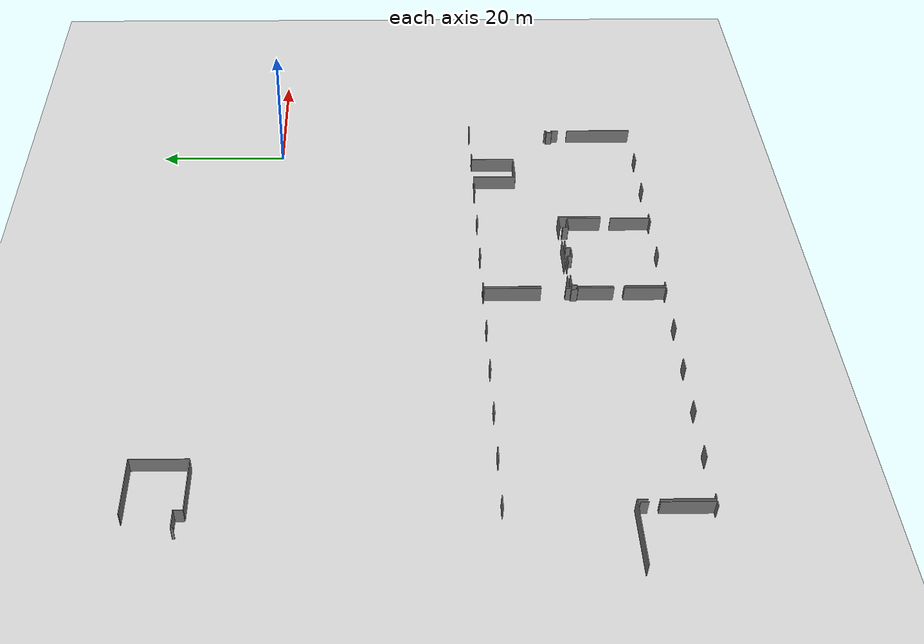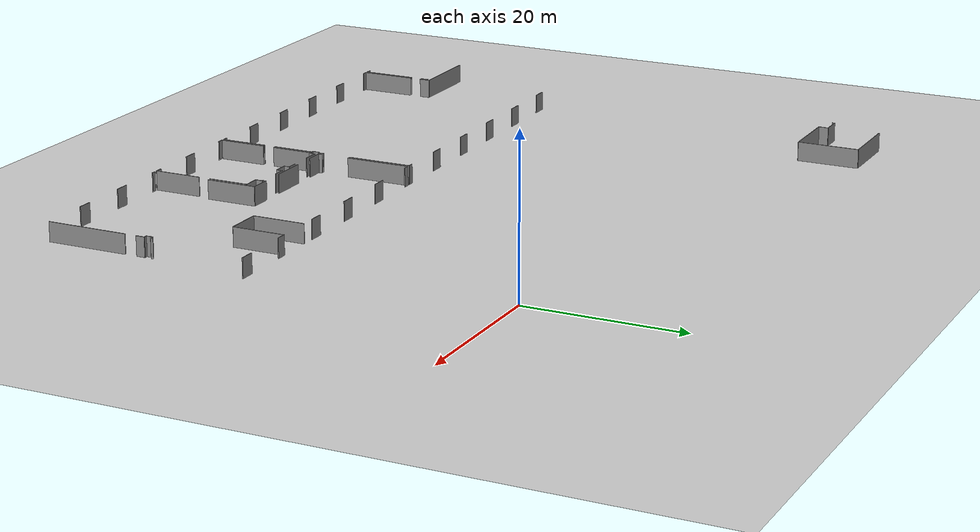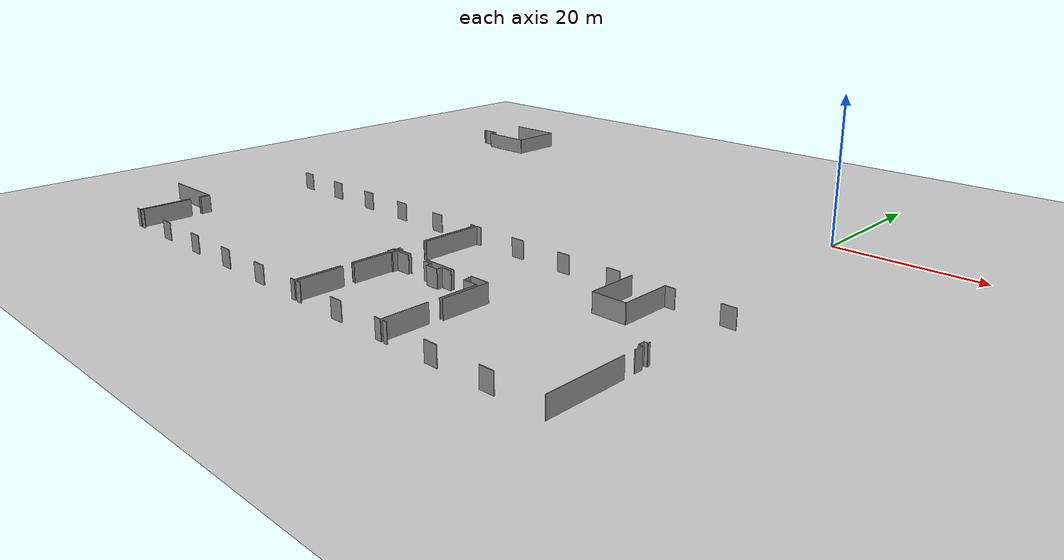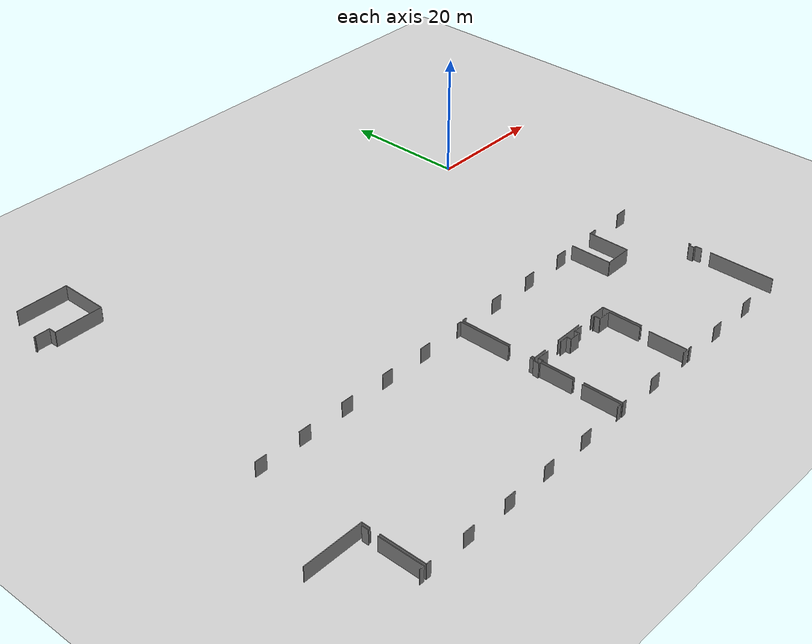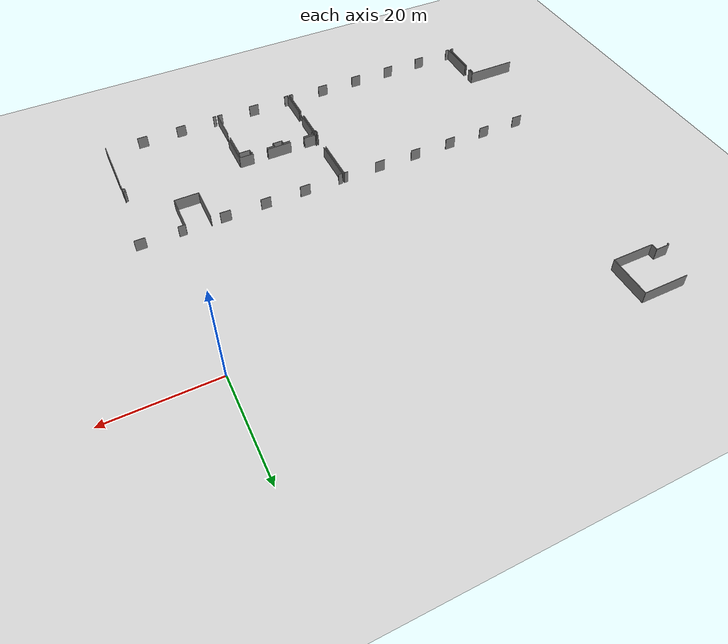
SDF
<sdf version="1.6">
 <world name="default">
  <model name="ground_plane">
   <static>1</static>
   <link name="link">
    <collision name="collision">
     <geometry><plane><normal>0 0 1</normal><size>100 100</size></plane></geometry>
     <surface><friction><ode><mu>100</mu><mu2>50</mu2></ode></friction></surface>
    </collision>
    <visual name="visual">
     <cast_shadows>0</cast_shadows>
     <geometry><plane><normal>0 0 1</normal><size>100 100</size></plane></geometry>
     <material>
      <script><uri>file://media/materials/scripts/gazebo.material</uri><name>Gazebo/Grey</name></script>
     </material>
    </visual>
   </link>
  </model>
  <model name="0510035519_A_40_1_102">
   <static>1</static>
   <link name="Wall_164">
    <collision name="Wall_164_Collision">
     <geometry><box><size>8.63896301944 0.1 2.5</size></box></geometry>
     <pose>4.31948150972 0 1.25 0 0 0</pose>
    </collision>
    <visual name="Wall_164_Visual">
     <pose>4.31948150972 0 1.25 0 0 0</pose>
     <geometry><box><size>8.63896301944 0.1 2.5</size></box></geometry>
     <material>
      <script><uri>file://media/materials/scripts/gazebo.material</uri><name>Gazebo/Grey</name></script>
      <ambient>1 1 1 1</ambient>
     </material>
    </visual>
    <pose>42.0279578091 -52.0238912187 0 0 0 0.0</pose>
   </link>
   <link name="Wall_165">
    <collision name="Wall_165_Collision">
     <geometry><box><size>8.05972804677 0.1 2.5</size></box></geometry>
     <pose>4.02986402338 0 1.25 0 0 0</pose>
    </collision>
    <visual name="Wall_165_Visual">
     <pose>4.02986402338 0 1.25 0 0 0</pose>
     <geometry><box><size>8.05972804677 0.1 2.5</size></box></geometry>
     <material>
      <script><uri>file://media/materials/scripts/gazebo.material</uri><name>Gazebo/Grey</name></script>
      <ambient>1 1 1 1</ambient>
     </material>
    </visual>
    <pose>50.6669208286 -52.0238912187 0 0 0 -1.57079632679</pose>
   </link>
   <link name="Wall_166">
    <collision name="Wall_166_Collision">
     <geometry><box><size>8.03685347566 0.1 2.5</size></box></geometry>
     <pose>4.01842673783 0 1.25 0 0 0</pose>
    </collision>
    <visual name="Wall_166_Visual">
     <pose>4.01842673783 0 1.25 0 0 0</pose>
     <geometry><box><size>8.03685347566 0.1 2.5</size></box></geometry>
     <material>
      <script><uri>file://media/materials/scripts/gazebo.material</uri><name>Gazebo/Grey</name></script>
      <ambient>1 1 1 1</ambient>
     </material>
    </visual>
    <pose>50.6669208286 -60.0836192655 0 0 0 3.14159265359</pose>
   </link>
   <link name="Wall_167">
    <collision name="Wall_167_Collision">
     <geometry><box><size>1.28529673402 0.1 2.5</size></box></geometry>
     <pose>0.64264836701 0 1.25 0 0 0</pose>
    </collision>
    <visual name="Wall_167_Visual">
     <pose>0.64264836701 0 1.25 0 0 0</pose>
     <geometry><box><size>1.28529673402 0.1 2.5</size></box></geometry>
     <material>
      <script><uri>file://media/materials/scripts/gazebo.material</uri><name>Gazebo/Grey</name></script>
      <ambient>1 1 1 1</ambient>
     </material>
    </visual>
    <pose>42.6300673529 -60.0836192655 0 0 0 1.57079632679</pose>
   </link>
   <link name="Wall_168">
    <collision name="Wall_168_Collision">
     <geometry><box><size>2.63591307663 0.1 2.5</size></box></geometry>
     <pose>1.31795653831 0 1.25 0 0 0</pose>
    </collision>
    <visual name="Wall_168_Visual">
     <pose>1.31795653831 0 1.25 0 0 0</pose>
     <geometry><box><size>2.63591307663 0.1 2.5</size></box></geometry>
     <material>
      <script><uri>file://media/materials/scripts/gazebo.material</uri><name>Gazebo/Grey</name></script>
      <ambient>1 1 1 1</ambient>
     </material>
    </visual>
    <pose>42.6300673529 -58.7983225315 0 0 0 3.14159265359</pose>
   </link>
   <link name="Wall_169">
    <collision name="Wall_169_Collision">
     <geometry><box><size>0.32126064303 0.1 2.5</size></box></geometry>
     <pose>0.160630321515 0 1.25 0 0 0</pose>
    </collision>
    <visual name="Wall_169_Visual">
     <pose>0.160630321515 0 1.25 0 0 0</pose>
     <geometry><box><size>0.32126064303 0.1 2.5</size></box></geometry>
     <material>
      <script><uri>file://media/materials/scripts/gazebo.material</uri><name>Gazebo/Grey</name></script>
      <ambient>1 1 1 1</ambient>
     </material>
    </visual>
    <pose>39.9941542763 -58.7983225315 0 0 0 -1.57079632679</pose>
   </link>
   <link name="Wall_532">
    <collision name="Wall_532_Collision">
     <geometry><box><size>1.079679756 0.1 2.5</size></box></geometry>
     <pose>0.539839878002 0 1.25 0 0 0</pose>
    </collision>
    <visual name="Wall_532_Visual">
     <pose>0.539839878002 0 1.25 0 0 0</pose>
     <geometry><box><size>1.079679756 0.1 2.5</size></box></geometry>
     <material>
      <script><uri>file://media/materials/scripts/gazebo.material</uri><name>Gazebo/Grey</name></script>
      <ambient>1 1 1 1</ambient>
     </material>
    </visual>
    <pose>43.4431312746 -117.692718262 0 0 0 -1.57079632679</pose>
   </link>
   <link name="Wall_533">
    <collision name="Wall_533_Collision">
     <geometry><box><size>7.15338670733 0.1 2.5</size></box></geometry>
     <pose>3.57669335367 0 1.25 0 0 0</pose>
    </collision>
    <visual name="Wall_533_Visual">
     <pose>3.57669335367 0 1.25 0 0 0</pose>
     <geometry><box><size>7.15338670733 0.1 2.5</size></box></geometry>
     <material>
      <script><uri>file://media/materials/scripts/gazebo.material</uri><name>Gazebo/Grey</name></script>
      <ambient>1 1 1 1</ambient>
     </material>
    </visual>
    <pose>43.4431312746 -120.242216292 0 0 0 -1.57079632679</pose>
   </link>
   <link name="Wall_534">
    <collision name="Wall_534_Collision">
     <geometry><box><size>0.744186046512 0.1 2.5</size></box></geometry>
     <pose>0.372093023256 0 1.25 0 0 0</pose>
    </collision>
    <visual name="Wall_534_Visual">
     <pose>0.372093023256 0 1.25 0 0 0</pose>
     <geometry><box><size>0.744186046512 0.1 2.5</size></box></geometry>
     <material>
      <script><uri>file://media/materials/scripts/gazebo.material</uri><name>Gazebo/Grey</name></script>
      <ambient>1 1 1 1</ambient>
     </material>
    </visual>
    <pose>43.4431312746 -127.395602999 0 0 0 3.14159265359</pose>
   </link>
   <link name="Wall_536">
    <collision name="Wall_536_Collision">
     <geometry><box><size>7.16304485958 0.1 2.5</size></box></geometry>
     <pose>3.58152242979 0 1.25 0 0 0</pose>
    </collision>
    <visual name="Wall_536_Visual">
     <pose>3.58152242979 0 1.25 0 0 0</pose>
     <geometry><box><size>7.16304485958 0.1 2.5</size></box></geometry>
     <material>
      <script><uri>file://media/materials/scripts/gazebo.material</uri><name>Gazebo/Grey</name></script>
      <ambient>1 1 1 1</ambient>
     </material>
    </visual>
    <pose>43.8373363833 -127.388486466 0 0 0 1.57079632679</pose>
   </link>
   <link name="Wall_537">
    <collision name="Wall_537_Collision">
     <geometry><box><size>1.39585716101 0.1 2.5</size></box></geometry>
     <pose>0.697928580506 0 1.25 0 0 0</pose>
    </collision>
    <visual name="Wall_537_Visual">
     <pose>0.697928580506 0 1.25 0 0 0</pose>
     <geometry><box><size>1.39585716101 0.1 2.5</size></box></geometry>
     <material>
      <script><uri>file://media/materials/scripts/gazebo.material</uri><name>Gazebo/Grey</name></script>
      <ambient>1 1 1 1</ambient>
     </material>
    </visual>
    <pose>43.8373363833 -118.696657771 0 0 0 1.57079632679</pose>
   </link>
   <link name="Wall_538">
    <collision name="Wall_538_Collision">
     <geometry><box><size>9.6634896429 0.1 2.5</size></box></geometry>
     <pose>4.83174482145 0 1.25 0 0 0</pose>
    </collision>
    <visual name="Wall_538_Visual">
     <pose>4.83174482145 0 1.25 0 0 0</pose>
     <geometry><box><size>9.6634896429 0.1 2.5</size></box></geometry>
     <material>
      <script><uri>file://media/materials/scripts/gazebo.material</uri><name>Gazebo/Grey</name></script>
      <ambient>1 1 1 1</ambient>
     </material>
    </visual>
    <pose>43.8373363833 -117.30080061 0 0 0 3.14159265359</pose>
   </link>
   <link name="Wall_546">
    <collision name="Wall_546_Collision">
     <geometry><box><size>1.97127970517 0.1 2.5</size></box></geometry>
     <pose>0.985639852586 0 1.25 0 0 0</pose>
    </collision>
    <visual name="Wall_546_Visual">
     <pose>0.985639852586 0 1.25 0 0 0</pose>
     <geometry><box><size>1.97127970517 0.1 2.5</size></box></geometry>
     <material>
      <script><uri>file://media/materials/scripts/gazebo.material</uri><name>Gazebo/Grey</name></script>
      <ambient>1 1 1 1</ambient>
     </material>
    </visual>
    <pose>42.6491294955 -100.288982082 0 0 0 0.0</pose>
   </link>
   <link name="Wall_547">
    <collision name="Wall_547_Collision">
     <geometry><box><size>2.01067479985 0.1 2.5</size></box></geometry>
     <pose>1.00533739992 0 1.25 0 0 0</pose>
    </collision>
    <visual name="Wall_547_Visual">
     <pose>1.00533739992 0 1.25 0 0 0</pose>
     <geometry><box><size>2.01067479985 0.1 2.5</size></box></geometry>
     <material>
      <script><uri>file://media/materials/scripts/gazebo.material</uri><name>Gazebo/Grey</name></script>
      <ambient>1 1 1 1</ambient>
     </material>
    </visual>
    <pose>50.3690430804 -100.288982082 0 0 0 0.0</pose>
   </link>
   <link name="Wall_548">
    <collision name="Wall_548_Collision">
     <geometry><box><size>1.99695005719 0.1 2.5</size></box></geometry>
     <pose>0.998475028593 0 1.25 0 0 0</pose>
    </collision>
    <visual name="Wall_548_Visual">
     <pose>0.998475028593 0 1.25 0 0 0</pose>
     <geometry><box><size>1.99695005719 0.1 2.5</size></box></geometry>
     <material>
      <script><uri>file://media/materials/scripts/gazebo.material</uri><name>Gazebo/Grey</name></script>
      <ambient>1 1 1 1</ambient>
     </material>
    </visual>
    <pose>58.1565637311 -100.288982082 0 0 0 0.0</pose>
   </link>
   <link name="Wall_549">
    <collision name="Wall_549_Collision">
     <geometry><box><size>1.94433854365 0.1 2.5</size></box></geometry>
     <pose>0.972169271826 0 1.25 0 0 0</pose>
    </collision>
    <visual name="Wall_549_Visual">
     <pose>0.972169271826 0 1.25 0 0 0</pose>
     <geometry><box><size>1.94433854365 0.1 2.5</size></box></geometry>
     <material>
      <script><uri>file://media/materials/scripts/gazebo.material</uri><name>Gazebo/Grey</name></script>
      <ambient>1 1 1 1</ambient>
     </material>
    </visual>
    <pose>65.9583174482 -100.288982082 0 0 0 0.0</pose>
   </link>
   <link name="Wall_550">
    <collision name="Wall_550_Collision">
     <geometry><box><size>1.95247172449 0.1 2.5</size></box></geometry>
     <pose>0.976235862244 0 1.25 0 0 0</pose>
    </collision>
    <visual name="Wall_550_Visual">
     <pose>0.976235862244 0 1.25 0 0 0</pose>
     <geometry><box><size>1.95247172449 0.1 2.5</size></box></geometry>
     <material>
      <script><uri>file://media/materials/scripts/gazebo.material</uri><name>Gazebo/Grey</name></script>
      <ambient>1 1 1 1</ambient>
     </material>
    </visual>
    <pose>73.6688270428 -100.288982082 0 0 0 0.0</pose>
   </link>
   <link name="Wall_551">
    <collision name="Wall_551_Collision">
     <geometry><box><size>0.751302579743 0.1 2.5</size></box></geometry>
     <pose>0.375651289872 0 1.25 0 0 0</pose>
    </collision>
    <visual name="Wall_551_Visual">
     <pose>0.375651289872 0 1.25 0 0 0</pose>
     <geometry><box><size>0.751302579743 0.1 2.5</size></box></geometry>
     <material>
      <script><uri>file://media/materials/scripts/gazebo.material</uri><name>Gazebo/Grey</name></script>
      <ambient>1 1 1 1</ambient>
     </material>
    </visual>
    <pose>81.4388105223 -100.288982082 0 0 0 0.0</pose>
   </link>
   <link name="Wall_552">
    <collision name="Wall_552_Collision">
     <geometry><box><size>8.57084762994 0.1 2.5</size></box></geometry>
     <pose>4.28542381497 0 1.25 0 0 0</pose>
    </collision>
    <visual name="Wall_552_Visual">
     <pose>4.28542381497 0 1.25 0 0 0</pose>
     <geometry><box><size>8.57084762994 0.1 2.5</size></box></geometry>
     <material>
      <script><uri>file://media/materials/scripts/gazebo.material</uri><name>Gazebo/Grey</name></script>
      <ambient>1 1 1 1</ambient>
     </material>
    </visual>
    <pose>82.190113102 -100.288982082 0 0 0 -1.57079632679</pose>
   </link>
   <link name="Wall_553">
    <collision name="Wall_553_Collision">
     <geometry><box><size>0.780785360274 0.1 2.5</size></box></geometry>
     <pose>0.390392680137 0 1.25 0 0 0</pose>
    </collision>
    <visual name="Wall_553_Visual">
     <pose>0.390392680137 0 1.25 0 0 0</pose>
     <geometry><box><size>0.780785360274 0.1 2.5</size></box></geometry>
     <material>
      <script><uri>file://media/materials/scripts/gazebo.material</uri><name>Gazebo/Grey</name></script>
      <ambient>1 1 1 1</ambient>
     </material>
    </visual>
    <pose>82.190113102 -112.550260516 0 0 0 -1.57079632679</pose>
   </link>
   <link name="Wall_554">
    <collision name="Wall_554_Collision">
     <geometry><box><size>0.248062015504 0.1 2.5</size></box></geometry>
     <pose>0.124031007752 0 1.25 0 0 0</pose>
    </collision>
    <visual name="Wall_554_Visual">
     <pose>0.124031007752 0 1.25 0 0 0</pose>
     <geometry><box><size>0.248062015504 0.1 2.5</size></box></geometry>
     <material>
      <script><uri>file://media/materials/scripts/gazebo.material</uri><name>Gazebo/Grey</name></script>
      <ambient>1 1 1 1</ambient>
     </material>
    </visual>
    <pose>82.190113102 -113.331045876 0 0 0 3.14159265359</pose>
   </link>
   <link name="Wall_555">
    <collision name="Wall_555_Collision">
     <geometry><box><size>0.935824119964 0.1 2.5</size></box></geometry>
     <pose>0.467912059982 0 1.25 0 0 0</pose>
    </collision>
    <visual name="Wall_555_Visual">
     <pose>0.467912059982 0 1.25 0 0 0</pose>
     <geometry><box><size>0.935824119964 0.1 2.5</size></box></geometry>
     <material>
      <script><uri>file://media/materials/scripts/gazebo.material</uri><name>Gazebo/Grey</name></script>
      <ambient>1 1 1 1</ambient>
     </material>
    </visual>
    <pose>81.9420510865 -113.331045876 0 0 0 -1.57079632679</pose>
   </link>
   <link name="Wall_556">
    <collision name="Wall_556_Collision">
     <geometry><box><size>0.273224043716 0.1 2.5</size></box></geometry>
     <pose>0.136612021858 0 1.25 0 0 0</pose>
    </collision>
    <visual name="Wall_556_Visual">
     <pose>0.136612021858 0 1.25 0 0 0</pose>
     <geometry><box><size>0.273224043716 0.1 2.5</size></box></geometry>
     <material>
      <script><uri>file://media/materials/scripts/gazebo.material</uri><name>Gazebo/Grey</name></script>
      <ambient>1 1 1 1</ambient>
     </material>
    </visual>
    <pose>81.9420510865 -114.266869996 0 0 0 0.0</pose>
   </link>
   <link name="Wall_557">
    <collision name="Wall_557_Collision">
     <geometry><box><size>5.4380480366 0.1 2.5</size></box></geometry>
     <pose>2.7190240183 0 1.25 0 0 0</pose>
    </collision>
    <visual name="Wall_557_Visual">
     <pose>2.7190240183 0 1.25 0 0 0</pose>
     <geometry><box><size>5.4380480366 0.1 2.5</size></box></geometry>
     <material>
      <script><uri>file://media/materials/scripts/gazebo.material</uri><name>Gazebo/Grey</name></script>
      <ambient>1 1 1 1</ambient>
     </material>
    </visual>
    <pose>82.2152751303 -114.266869996 0 0 0 -1.57079632679</pose>
   </link>
   <link name="Wall_558">
    <collision name="Wall_558_Collision">
     <geometry><box><size>6.17664252129 0.1 2.5</size></box></geometry>
     <pose>3.08832126064 0 1.25 0 0 0</pose>
    </collision>
    <visual name="Wall_558_Visual">
     <pose>3.08832126064 0 1.25 0 0 0</pose>
     <geometry><box><size>6.17664252129 0.1 2.5</size></box></geometry>
     <material>
      <script><uri>file://media/materials/scripts/gazebo.material</uri><name>Gazebo/Grey</name></script>
      <ambient>1 1 1 1</ambient>
     </material>
    </visual>
    <pose>82.2152751303 -121.23268522 0 0 0 -1.57079632679</pose>
   </link>
   <link name="Wall_559">
    <collision name="Wall_559_Collision">
     <geometry><box><size>0.722073961113 0.1 2.5</size></box></geometry>
     <pose>0.361036980557 0 1.25 0 0 0</pose>
    </collision>
    <visual name="Wall_559_Visual">
     <pose>0.361036980557 0 1.25 0 0 0</pose>
     <geometry><box><size>0.722073961113 0.1 2.5</size></box></geometry>
     <material>
      <script><uri>file://media/materials/scripts/gazebo.material</uri><name>Gazebo/Grey</name></script>
      <ambient>1 1 1 1</ambient>
     </material>
    </visual>
    <pose>82.2152751303 -127.409327742 0 0 0 3.14159265359</pose>
   </link>
   <link name="Wall_560">
    <collision name="Wall_560_Collision">
     <geometry><box><size>1.99390011437 0.1 2.5</size></box></geometry>
     <pose>0.996950057186 0 1.25 0 0 0</pose>
    </collision>
    <visual name="Wall_560_Visual">
     <pose>0.996950057186 0 1.25 0 0 0</pose>
     <geometry><box><size>1.99390011437 0.1 2.5</size></box></geometry>
     <material>
      <script><uri>file://media/materials/scripts/gazebo.material</uri><name>Gazebo/Grey</name></script>
      <ambient>1 1 1 1</ambient>
     </material>
    </visual>
    <pose>75.6642521286 -127.409327742 0 0 0 3.14159265359</pose>
   </link>
   <link name="Wall_561">
    <collision name="Wall_561_Collision">
     <geometry><box><size>1.89909772525 0.1 2.5</size></box></geometry>
     <pose>0.949548862625 0 1.25 0 0 0</pose>
    </collision>
    <visual name="Wall_561_Visual">
     <pose>0.949548862625 0 1.25 0 0 0</pose>
     <geometry><box><size>1.89909772525 0.1 2.5</size></box></geometry>
     <material>
      <script><uri>file://media/materials/scripts/gazebo.material</uri><name>Gazebo/Grey</name></script>
      <ambient>1 1 1 1</ambient>
     </material>
    </visual>
    <pose>67.8619900877 -127.409327742 0 0 0 3.14159265359</pose>
   </link>
   <link name="Wall_562">
    <collision name="Wall_562_Collision">
     <geometry><box><size>1.90138518236 0.1 2.5</size></box></geometry>
     <pose>0.950692591181 0 1.25 0 0 0</pose>
    </collision>
    <visual name="Wall_562_Visual">
     <pose>0.950692591181 0 1.25 0 0 0</pose>
     <geometry><box><size>1.90138518236 0.1 2.5</size></box></geometry>
     <material>
      <script><uri>file://media/materials/scripts/gazebo.material</uri><name>Gazebo/Grey</name></script>
      <ambient>1 1 1 1</ambient>
     </material>
    </visual>
    <pose>60.0963273605 -127.409327742 0 0 0 3.14159265359</pose>
   </link>
   <link name="Wall_563">
    <collision name="Wall_563_Collision">
     <geometry><box><size>1.92908882958 0.1 2.5</size></box></geometry>
     <pose>0.964544414792 0 1.25 0 0 0</pose>
    </collision>
    <visual name="Wall_563_Visual">
     <pose>0.964544414792 0 1.25 0 0 0</pose>
     <geometry><box><size>1.92908882958 0.1 2.5</size></box></geometry>
     <material>
      <script><uri>file://media/materials/scripts/gazebo.material</uri><name>Gazebo/Grey</name></script>
      <ambient>1 1 1 1</ambient>
     </material>
    </visual>
    <pose>52.3659931376 -127.409327742 0 0 0 3.14159265359</pose>
   </link>
   <link name="Wall_564">
    <collision name="Wall_564_Collision">
     <geometry><box><size>0.76629813191 0.1 2.5</size></box></geometry>
     <pose>0.383149065955 0 1.25 0 0 0</pose>
    </collision>
    <visual name="Wall_564_Visual">
     <pose>0.383149065955 0 1.25 0 0 0</pose>
     <geometry><box><size>0.76629813191 0.1 2.5</size></box></geometry>
     <material>
      <script><uri>file://media/materials/scripts/gazebo.material</uri><name>Gazebo/Grey</name></script>
      <ambient>1 1 1 1</ambient>
     </material>
    </visual>
    <pose>44.60160122 -127.409327742 0 0 0 3.14159265359</pose>
   </link>
   <link name="Wall_565">
    <collision name="Wall_565_Collision">
     <geometry><box><size>0.0209402261269 0.1 2.5</size></box></geometry>
     <pose>0.0104701130634 0 1.25 0 0 0</pose>
    </collision>
    <visual name="Wall_565_Visual">
     <pose>0.0104701130634 0 1.25 0 0 0</pose>
     <geometry><box><size>0.0209402261269 0.1 2.5</size></box></geometry>
     <material>
      <script><uri>file://media/materials/scripts/gazebo.material</uri><name>Gazebo/Grey</name></script>
      <ambient>1 1 1 1</ambient>
     </material>
    </visual>
    <pose>43.8353030881 -127.409327742 0 0 0 1.47354312854</pose>
   </link>
   <link name="Wall_573">
    <collision name="Wall_573_Collision">
     <geometry><box><size>6.20663362562 0.1 2.5</size></box></geometry>
     <pose>3.10331681281 0 1.25 0 0 0</pose>
    </collision>
    <visual name="Wall_573_Visual">
     <pose>3.10331681281 0 1.25 0 0 0</pose>
     <geometry><box><size>6.20663362562 0.1 2.5</size></box></geometry>
     <material>
      <script><uri>file://media/materials/scripts/gazebo.material</uri><name>Gazebo/Grey</name></script>
      <ambient>1 1 1 1</ambient>
     </material>
    </visual>
    <pose>82.6087177532 -127.395857161 0 0 0 1.57079632679</pose>
   </link>
   <link name="Wall_574">
    <collision name="Wall_574_Collision">
     <geometry><box><size>5.41339433219 0.1 2.5</size></box></geometry>
     <pose>2.70669716609 0 1.25 0 0 0</pose>
    </collision>
    <visual name="Wall_574_Visual">
     <pose>2.70669716609 0 1.25 0 0 0</pose>
     <geometry><box><size>5.41339433219 0.1 2.5</size></box></geometry>
     <material>
      <script><uri>file://media/materials/scripts/gazebo.material</uri><name>Gazebo/Grey</name></script>
      <ambient>1 1 1 1</ambient>
     </material>
    </visual>
    <pose>82.6087177532 -119.682043462 0 0 0 1.57079632679</pose>
   </link>
   <link name="Wall_575">
    <collision name="Wall_575_Collision">
     <geometry><box><size>0.221375015885 0.1 2.5</size></box></geometry>
     <pose>0.110687507943 0 1.25 0 0 0</pose>
    </collision>
    <visual name="Wall_575_Visual">
     <pose>0.110687507943 0 1.25 0 0 0</pose>
     <geometry><box><size>0.221375015885 0.1 2.5</size></box></geometry>
     <material>
      <script><uri>file://media/materials/scripts/gazebo.material</uri><name>Gazebo/Grey</name></script>
      <ambient>1 1 1 1</ambient>
     </material>
    </visual>
    <pose>82.6087177532 -114.268649129 0 0 0 0.0</pose>
   </link>
   <link name="Wall_576">
    <collision name="Wall_576_Collision">
     <geometry><box><size>0.77748125556 0.1 2.5</size></box></geometry>
     <pose>0.38874062778 0 1.25 0 0 0</pose>
    </collision>
    <visual name="Wall_576_Visual">
     <pose>0.38874062778 0 1.25 0 0 0</pose>
     <geometry><box><size>0.77748125556 0.1 2.5</size></box></geometry>
     <material>
      <script><uri>file://media/materials/scripts/gazebo.material</uri><name>Gazebo/Grey</name></script>
      <ambient>1 1 1 1</ambient>
     </material>
    </visual>
    <pose>82.8300927691 -114.268649129 0 0 0 1.57079632679</pose>
   </link>
   <link name="Wall_577">
    <collision name="Wall_577_Collision">
     <geometry><box><size>2.13673910281 0.1 2.5</size></box></geometry>
     <pose>1.0683695514 0 1.25 0 0 0</pose>
    </collision>
    <visual name="Wall_577_Visual">
     <pose>1.0683695514 0 1.25 0 0 0</pose>
     <geometry><box><size>2.13673910281 0.1 2.5</size></box></geometry>
     <material>
      <script><uri>file://media/materials/scripts/gazebo.material</uri><name>Gazebo/Grey</name></script>
      <ambient>1 1 1 1</ambient>
     </material>
    </visual>
    <pose>82.8300927691 -113.491167874 0 0 0 0.0</pose>
   </link>
   <link name="Wall_578">
    <collision name="Wall_578_Collision">
     <geometry><box><size>1.38213241835 0.1 2.5</size></box></geometry>
     <pose>0.691066209175 0 1.25 0 0 0</pose>
    </collision>
    <visual name="Wall_578_Visual">
     <pose>0.691066209175 0 1.25 0 0 0</pose>
     <geometry><box><size>1.38213241835 0.1 2.5</size></box></geometry>
     <material>
      <script><uri>file://media/materials/scripts/gazebo.material</uri><name>Gazebo/Grey</name></script>
      <ambient>1 1 1 1</ambient>
     </material>
    </visual>
    <pose>87.8304740119 -113.491167874 0 0 0 0.0</pose>
   </link>
   <link name="Wall_579">
    <collision name="Wall_579_Collision">
     <geometry><box><size>0.741390265599 0.1 2.5</size></box></geometry>
     <pose>0.3706951328 0 1.25 0 0 0</pose>
    </collision>
    <visual name="Wall_579_Visual">
     <pose>0.3706951328 0 1.25 0 0 0</pose>
     <geometry><box><size>0.741390265599 0.1 2.5</size></box></geometry>
     <material>
      <script><uri>file://media/materials/scripts/gazebo.material</uri><name>Gazebo/Grey</name></script>
      <ambient>1 1 1 1</ambient>
     </material>
    </visual>
    <pose>89.2126064303 -113.491167874 0 0 0 -1.57079632679</pose>
   </link>
   <link name="Wall_580">
    <collision name="Wall_580_Collision">
     <geometry><box><size>1.85182361164 0.1 2.5</size></box></geometry>
     <pose>0.92591180582 0 1.25 0 0 0</pose>
    </collision>
    <visual name="Wall_580_Visual">
     <pose>0.92591180582 0 1.25 0 0 0</pose>
     <geometry><box><size>1.85182361164 0.1 2.5</size></box></geometry>
     <material>
      <script><uri>file://media/materials/scripts/gazebo.material</uri><name>Gazebo/Grey</name></script>
      <ambient>1 1 1 1</ambient>
     </material>
    </visual>
    <pose>89.2126064303 -114.23255814 0 0 0 0.0</pose>
   </link>
   <link name="Wall_581">
    <collision name="Wall_581_Collision">
     <geometry><box><size>0.759435760579 0.1 2.5</size></box></geometry>
     <pose>0.37971788029 0 1.25 0 0 0</pose>
    </collision>
    <visual name="Wall_581_Visual">
     <pose>0.37971788029 0 1.25 0 0 0</pose>
     <geometry><box><size>0.759435760579 0.1 2.5</size></box></geometry>
     <material>
      <script><uri>file://media/materials/scripts/gazebo.material</uri><name>Gazebo/Grey</name></script>
      <ambient>1 1 1 1</ambient>
     </material>
    </visual>
    <pose>91.0644300419 -114.23255814 0 0 0 1.57079632679</pose>
   </link>
   <link name="Wall_582">
    <collision name="Wall_582_Collision">
     <geometry><box><size>1.58444529165 0.1 2.5</size></box></geometry>
     <pose>0.792222645825 0 1.25 0 0 0</pose>
    </collision>
    <visual name="Wall_582_Visual">
     <pose>0.792222645825 0 1.25 0 0 0</pose>
     <geometry><box><size>1.58444529165 0.1 2.5</size></box></geometry>
     <material>
      <script><uri>file://media/materials/scripts/gazebo.material</uri><name>Gazebo/Grey</name></script>
      <ambient>1 1 1 1</ambient>
     </material>
    </visual>
    <pose>91.0644300419 -113.473122379 0 0 0 0.0</pose>
   </link>
   <link name="Wall_583">
    <collision name="Wall_583_Collision">
     <geometry><box><size>0.257974329648 0.1 2.5</size></box></geometry>
     <pose>0.128987164824 0 1.25 0 0 0</pose>
    </collision>
    <visual name="Wall_583_Visual">
     <pose>0.128987164824 0 1.25 0 0 0</pose>
     <geometry><box><size>0.257974329648 0.1 2.5</size></box></geometry>
     <material>
      <script><uri>file://media/materials/scripts/gazebo.material</uri><name>Gazebo/Grey</name></script>
      <ambient>1 1 1 1</ambient>
     </material>
    </visual>
    <pose>95.5641123396 -113.473122379 0 0 0 0.0</pose>
   </link>
   <link name="Wall_584">
    <collision name="Wall_584_Collision">
     <geometry><box><size>0.906087177532 0.1 2.5</size></box></geometry>
     <pose>0.453043588766 0 1.25 0 0 0</pose>
    </collision>
    <visual name="Wall_584_Visual">
     <pose>0.453043588766 0 1.25 0 0 0</pose>
     <geometry><box><size>0.906087177532 0.1 2.5</size></box></geometry>
     <material>
      <script><uri>file://media/materials/scripts/gazebo.material</uri><name>Gazebo/Grey</name></script>
      <ambient>1 1 1 1</ambient>
     </material>
    </visual>
    <pose>95.8220866692 -113.473122379 0 0 0 -1.57079632679</pose>
   </link>
   <link name="Wall_585">
    <collision name="Wall_585_Collision">
     <geometry><box><size>2.12098106494 0.1 2.5</size></box></geometry>
     <pose>1.06049053247 0 1.25 0 0 0</pose>
    </collision>
    <visual name="Wall_585_Visual">
     <pose>1.06049053247 0 1.25 0 0 0</pose>
     <geometry><box><size>2.12098106494 0.1 2.5</size></box></geometry>
     <material>
      <script><uri>file://media/materials/scripts/gazebo.material</uri><name>Gazebo/Grey</name></script>
      <ambient>1 1 1 1</ambient>
     </material>
    </visual>
    <pose>95.8220866692 -114.379209556 0 0 0 0.0</pose>
   </link>
   <link name="Wall_586">
    <collision name="Wall_586_Collision">
     <geometry><box><size>5.31452535265 0.1 2.5</size></box></geometry>
     <pose>2.65726267632 0 1.25 0 0 0</pose>
    </collision>
    <visual name="Wall_586_Visual">
     <pose>2.65726267632 0 1.25 0 0 0</pose>
     <geometry><box><size>5.31452535265 0.1 2.5</size></box></geometry>
     <material>
      <script><uri>file://media/materials/scripts/gazebo.material</uri><name>Gazebo/Grey</name></script>
      <ambient>1 1 1 1</ambient>
     </material>
    </visual>
    <pose>97.9430677341 -114.379209556 0 0 0 -1.57079632679</pose>
   </link>
   <link name="Wall_587">
    <collision name="Wall_587_Collision">
     <geometry><box><size>6.21654593976 0.1 2.5</size></box></geometry>
     <pose>3.10827296988 0 1.25 0 0 0</pose>
    </collision>
    <visual name="Wall_587_Visual">
     <pose>3.10827296988 0 1.25 0 0 0</pose>
     <geometry><box><size>6.21654593976 0.1 2.5</size></box></geometry>
     <material>
      <script><uri>file://media/materials/scripts/gazebo.material</uri><name>Gazebo/Grey</name></script>
      <ambient>1 1 1 1</ambient>
     </material>
    </visual>
    <pose>97.9430677341 -121.21260643 0 0 0 -1.57079632679</pose>
   </link>
   <link name="Wall_588">
    <collision name="Wall_588_Collision">
     <geometry><box><size>0.952090481637 0.1 2.5</size></box></geometry>
     <pose>0.476045240818 0 1.25 0 0 0</pose>
    </collision>
    <visual name="Wall_588_Visual">
     <pose>0.476045240818 0 1.25 0 0 0</pose>
     <geometry><box><size>0.952090481637 0.1 2.5</size></box></geometry>
     <material>
      <script><uri>file://media/materials/scripts/gazebo.material</uri><name>Gazebo/Grey</name></script>
      <ambient>1 1 1 1</ambient>
     </material>
    </visual>
    <pose>97.9430677341 -127.42915237 0 0 0 3.14159265359</pose>
   </link>
   <link name="Wall_589">
    <collision name="Wall_589_Collision">
     <geometry><box><size>1.9326470962 0.1 2.5</size></box></geometry>
     <pose>0.9663235481 0 1.25 0 0 0</pose>
    </collision>
    <visual name="Wall_589_Visual">
     <pose>0.9663235481 0 1.25 0 0 0</pose>
     <geometry><box><size>1.9326470962 0.1 2.5</size></box></geometry>
     <material>
      <script><uri>file://media/materials/scripts/gazebo.material</uri><name>Gazebo/Grey</name></script>
      <ambient>1 1 1 1</ambient>
     </material>
    </visual>
    <pose>91.1561824882 -127.42915237 0 0 0 3.14159265359</pose>
   </link>
   <link name="Wall_590">
    <collision name="Wall_590_Collision">
     <geometry><box><size>0.791968483924 0.1 2.5</size></box></geometry>
     <pose>0.395984241962 0 1.25 0 0 0</pose>
    </collision>
    <visual name="Wall_590_Visual">
     <pose>0.395984241962 0 1.25 0 0 0</pose>
     <geometry><box><size>0.791968483924 0.1 2.5</size></box></geometry>
     <material>
      <script><uri>file://media/materials/scripts/gazebo.material</uri><name>Gazebo/Grey</name></script>
      <ambient>1 1 1 1</ambient>
     </material>
    </visual>
    <pose>83.3943321896 -127.42915237 0 0 0 3.14159265359</pose>
   </link>
   <link name="Wall_591">
    <collision name="Wall_591_Collision">
     <geometry><box><size>0.0338960892369 0.1 2.5</size></box></geometry>
     <pose>0.0169480446184 0 1.25 0 0 0</pose>
    </collision>
    <visual name="Wall_591_Visual">
     <pose>0.0169480446184 0 1.25 0 0 0</pose>
     <geometry><box><size>0.0338960892369 0.1 2.5</size></box></geometry>
     <material>
      <script><uri>file://media/materials/scripts/gazebo.material</uri><name>Gazebo/Grey</name></script>
      <ambient>1 1 1 1</ambient>
     </material>
    </visual>
    <pose>82.6023637057 -127.42915237 0 0 0 1.38222406738</pose>
   </link>
   <link name="Wall_592">
    <collision name="Wall_592_Collision">
     <geometry><box><size>6.61761341975 0.1 2.5</size></box></geometry>
     <pose>3.30880670987 0 1.25 0 0 0</pose>
    </collision>
    <visual name="Wall_592_Visual">
     <pose>3.30880670987 0 1.25 0 0 0</pose>
     <geometry><box><size>6.61761341975 0.1 2.5</size></box></geometry>
     <material>
      <script><uri>file://media/materials/scripts/gazebo.material</uri><name>Gazebo/Grey</name></script>
      <ambient>1 1 1 1</ambient>
     </material>
    </visual>
    <pose>98.3736179947 -119.670097852 0 0 0 1.57079632679</pose>
   </link>
   <link name="Wall_593">
    <collision name="Wall_593_Collision">
     <geometry><box><size>2.80213495997 0.1 2.5</size></box></geometry>
     <pose>1.40106747998 0 1.25 0 0 0</pose>
    </collision>
    <visual name="Wall_593_Visual">
     <pose>1.40106747998 0 1.25 0 0 0</pose>
     <geometry><box><size>2.80213495997 0.1 2.5</size></box></geometry>
     <material>
      <script><uri>file://media/materials/scripts/gazebo.material</uri><name>Gazebo/Grey</name></script>
      <ambient>1 1 1 1</ambient>
     </material>
    </visual>
    <pose>98.3736179947 -113.052484433 0 0 0 3.14159265359</pose>
   </link>
   <link name="Wall_594">
    <collision name="Wall_594_Collision">
     <geometry><box><size>4.81230143601 0.1 2.5</size></box></geometry>
     <pose>2.40615071801 0 1.25 0 0 0</pose>
    </collision>
    <visual name="Wall_594_Visual">
     <pose>2.40615071801 0 1.25 0 0 0</pose>
     <geometry><box><size>4.81230143601 0.1 2.5</size></box></geometry>
     <material>
      <script><uri>file://media/materials/scripts/gazebo.material</uri><name>Gazebo/Grey</name></script>
      <ambient>1 1 1 1</ambient>
     </material>
    </visual>
    <pose>92.6249841149 -113.052484433 0 0 0 3.14159265359</pose>
   </link>
   <link name="Wall_595">
    <collision name="Wall_595_Collision">
     <geometry><box><size>2.32888550006 0.1 2.5</size></box></geometry>
     <pose>1.16444275003 0 1.25 0 0 0</pose>
    </collision>
    <visual name="Wall_595_Visual">
     <pose>1.16444275003 0 1.25 0 0 0</pose>
     <geometry><box><size>2.32888550006 0.1 2.5</size></box></geometry>
     <material>
      <script><uri>file://media/materials/scripts/gazebo.material</uri><name>Gazebo/Grey</name></script>
      <ambient>1 1 1 1</ambient>
     </material>
    </visual>
    <pose>84.9210827297 -113.052484433 0 0 0 3.14159265359</pose>
   </link>
   <link name="Wall_596">
    <collision name="Wall_596_Collision">
     <geometry><box><size>0.520777735417 0.1 2.5</size></box></geometry>
     <pose>0.260388867709 0 1.25 0 0 0</pose>
    </collision>
    <visual name="Wall_596_Visual">
     <pose>0.260388867709 0 1.25 0 0 0</pose>
     <geometry><box><size>0.520777735417 0.1 2.5</size></box></geometry>
     <material>
      <script><uri>file://media/materials/scripts/gazebo.material</uri><name>Gazebo/Grey</name></script>
      <ambient>1 1 1 1</ambient>
     </material>
    </visual>
    <pose>82.5921972296 -113.052484433 0 0 0 1.57079632679</pose>
   </link>
   <link name="Wall_597">
    <collision name="Wall_597_Collision">
     <geometry><box><size>8.51798195451 0.1 2.5</size></box></geometry>
     <pose>4.25899097725 0 1.25 0 0 0</pose>
    </collision>
    <visual name="Wall_597_Visual">
     <pose>4.25899097725 0 1.25 0 0 0</pose>
     <geometry><box><size>8.51798195451 0.1 2.5</size></box></geometry>
     <material>
      <script><uri>file://media/materials/scripts/gazebo.material</uri><name>Gazebo/Grey</name></script>
      <ambient>1 1 1 1</ambient>
     </material>
    </visual>
    <pose>82.5921972296 -108.806964036 0 0 0 1.57079632679</pose>
   </link>
   <link name="Wall_598">
    <collision name="Wall_598_Collision">
     <geometry><box><size>0.796035074342 0.1 2.5</size></box></geometry>
     <pose>0.398017537171 0 1.25 0 0 0</pose>
    </collision>
    <visual name="Wall_598_Visual">
     <pose>0.398017537171 0 1.25 0 0 0</pose>
     <geometry><box><size>0.796035074342 0.1 2.5</size></box></geometry>
     <material>
      <script><uri>file://media/materials/scripts/gazebo.material</uri><name>Gazebo/Grey</name></script>
      <ambient>1 1 1 1</ambient>
     </material>
    </visual>
    <pose>82.5921972296 -100.288982082 0 0 0 0.0</pose>
   </link>
   <link name="Wall_599">
    <collision name="Wall_599_Collision">
     <geometry><box><size>1.96670479095 0.1 2.5</size></box></geometry>
     <pose>0.983352395476 0 1.25 0 0 0</pose>
    </collision>
    <visual name="Wall_599_Visual">
     <pose>0.983352395476 0 1.25 0 0 0</pose>
     <geometry><box><size>1.96670479095 0.1 2.5</size></box></geometry>
     <material>
      <script><uri>file://media/materials/scripts/gazebo.material</uri><name>Gazebo/Grey</name></script>
      <ambient>1 1 1 1</ambient>
     </material>
    </visual>
    <pose>89.1790570593 -100.288982082 0 0 0 0.0</pose>
   </link>
   <link name="Wall_600">
    <collision name="Wall_600_Collision">
     <geometry><box><size>1.92044732495 0.1 2.5</size></box></geometry>
     <pose>0.960223662473 0 1.25 0 0 0</pose>
    </collision>
    <visual name="Wall_600_Visual">
     <pose>0.960223662473 0 1.25 0 0 0</pose>
     <geometry><box><size>1.92044732495 0.1 2.5</size></box></geometry>
     <material>
      <script><uri>file://media/materials/scripts/gazebo.material</uri><name>Gazebo/Grey</name></script>
      <ambient>1 1 1 1</ambient>
     </material>
    </visual>
    <pose>96.9686110052 -100.288982082 0 0 0 0.0</pose>
   </link>
   <link name="Wall_601">
    <collision name="Wall_601_Collision">
     <geometry><box><size>2.00660820943 0.1 2.5</size></box></geometry>
     <pose>1.00330410471 0 1.25 0 0 0</pose>
    </collision>
    <visual name="Wall_601_Visual">
     <pose>1.00330410471 0 1.25 0 0 0</pose>
     <geometry><box><size>2.00660820943 0.1 2.5</size></box></geometry>
     <material>
      <script><uri>file://media/materials/scripts/gazebo.material</uri><name>Gazebo/Grey</name></script>
      <ambient>1 1 1 1</ambient>
     </material>
    </visual>
    <pose>104.650654467 -100.288982082 0 0 0 0.0</pose>
   </link>
   <link name="Wall_602">
    <collision name="Wall_602_Collision">
     <geometry><box><size>6.81179311221 0.1 2.5</size></box></geometry>
     <pose>3.40589655611 0 1.25 0 0 0</pose>
    </collision>
    <visual name="Wall_602_Visual">
     <pose>3.40589655611 0 1.25 0 0 0</pose>
     <geometry><box><size>6.81179311221 0.1 2.5</size></box></geometry>
     <material>
      <script><uri>file://media/materials/scripts/gazebo.material</uri><name>Gazebo/Grey</name></script>
      <ambient>1 1 1 1</ambient>
     </material>
    </visual>
    <pose>108.386580252 -100.288982082 0 0 0 -1.57079632679</pose>
   </link>
   <link name="Wall_603">
    <collision name="Wall_603_Collision">
     <geometry><box><size>4.62498411488 0.1 2.5</size></box></geometry>
     <pose>2.31249205744 0 1.25 0 0 0</pose>
    </collision>
    <visual name="Wall_603_Visual">
     <pose>2.31249205744 0 1.25 0 0 0</pose>
     <geometry><box><size>4.62498411488 0.1 2.5</size></box></geometry>
     <material>
      <script><uri>file://media/materials/scripts/gazebo.material</uri><name>Gazebo/Grey</name></script>
      <ambient>1 1 1 1</ambient>
     </material>
    </visual>
    <pose>108.386580252 -107.100775194 0 0 0 0.0</pose>
   </link>
   <link name="Wall_604">
    <collision name="Wall_604_Collision">
     <geometry><box><size>6.82018045495 0.1 2.5</size></box></geometry>
     <pose>3.41009022747 0 1.25 0 0 0</pose>
    </collision>
    <visual name="Wall_604_Visual">
     <pose>3.41009022747 0 1.25 0 0 0</pose>
     <geometry><box><size>6.82018045495 0.1 2.5</size></box></geometry>
     <material>
      <script><uri>file://media/materials/scripts/gazebo.material</uri><name>Gazebo/Grey</name></script>
      <ambient>1 1 1 1</ambient>
     </material>
    </visual>
    <pose>113.011564367 -107.100775194 0 0 0 1.57079632679</pose>
   </link>
   <link name="Wall_605">
    <collision name="Wall_605_Collision">
     <geometry><box><size>1.35824119964 0.1 2.5</size></box></geometry>
     <pose>0.679120599822 0 1.25 0 0 0</pose>
    </collision>
    <visual name="Wall_605_Visual">
     <pose>0.679120599822 0 1.25 0 0 0</pose>
     <geometry><box><size>1.35824119964 0.1 2.5</size></box></geometry>
     <material>
      <script><uri>file://media/materials/scripts/gazebo.material</uri><name>Gazebo/Grey</name></script>
      <ambient>1 1 1 1</ambient>
     </material>
    </visual>
    <pose>113.011564367 -100.280594739 0 0 0 0.0</pose>
   </link>
   <link name="Wall_606">
    <collision name="Wall_606_Collision">
     <geometry><box><size>1.9776337527 0.1 2.5</size></box></geometry>
     <pose>0.98881687635 0 1.25 0 0 0</pose>
    </collision>
    <visual name="Wall_606_Visual">
     <pose>0.98881687635 0 1.25 0 0 0</pose>
     <geometry><box><size>1.9776337527 0.1 2.5</size></box></geometry>
     <material>
      <script><uri>file://media/materials/scripts/gazebo.material</uri><name>Gazebo/Grey</name></script>
      <ambient>1 1 1 1</ambient>
     </material>
    </visual>
    <pose>120.200279578 -100.280594739 0 0 0 0.0</pose>
   </link>
   <link name="Wall_619">
    <collision name="Wall_619_Collision">
     <geometry><box><size>0.308552547973 0.1 2.5</size></box></geometry>
     <pose>0.154276273987 0 1.25 0 0 0</pose>
    </collision>
    <visual name="Wall_619_Visual">
     <pose>0.154276273987 0 1.25 0 0 0</pose>
     <geometry><box><size>0.308552547973 0.1 2.5</size></box></geometry>
     <material>
      <script><uri>file://media/materials/scripts/gazebo.material</uri><name>Gazebo/Grey</name></script>
      <ambient>1 1 1 1</ambient>
     </material>
    </visual>
    <pose>120.720294828 -113.054009404 0 0 0 -1.57079632679</pose>
   </link>
   <link name="Wall_620">
    <collision name="Wall_620_Collision">
     <geometry><box><size>0.448595755496 0.1 2.5</size></box></geometry>
     <pose>0.224297877748 0 1.25 0 0 0</pose>
    </collision>
    <visual name="Wall_620_Visual">
     <pose>0.224297877748 0 1.25 0 0 0</pose>
     <geometry><box><size>0.448595755496 0.1 2.5</size></box></geometry>
     <material>
      <script><uri>file://media/materials/scripts/gazebo.material</uri><name>Gazebo/Grey</name></script>
      <ambient>1 1 1 1</ambient>
     </material>
    </visual>
    <pose>120.720294828 -113.362561952 0 0 0 3.14159265359</pose>
   </link>
   <link name="Wall_621">
    <collision name="Wall_621_Collision">
     <geometry><box><size>0.872537806583 0.1 2.5</size></box></geometry>
     <pose>0.436268903291 0 1.25 0 0 0</pose>
    </collision>
    <visual name="Wall_621_Visual">
     <pose>0.436268903291 0 1.25 0 0 0</pose>
     <geometry><box><size>0.872537806583 0.1 2.5</size></box></geometry>
     <material>
      <script><uri>file://media/materials/scripts/gazebo.material</uri><name>Gazebo/Grey</name></script>
      <ambient>1 1 1 1</ambient>
     </material>
    </visual>
    <pose>120.271699072 -113.362561952 0 0 0 -1.57079632679</pose>
   </link>
   <link name="Wall_622">
    <collision name="Wall_622_Collision">
     <geometry><box><size>0.448595755496 0.1 2.5</size></box></geometry>
     <pose>0.224297877748 0 1.25 0 0 0</pose>
    </collision>
    <visual name="Wall_622_Visual">
     <pose>0.224297877748 0 1.25 0 0 0</pose>
     <geometry><box><size>0.448595755496 0.1 2.5</size></box></geometry>
     <material>
      <script><uri>file://media/materials/scripts/gazebo.material</uri><name>Gazebo/Grey</name></script>
      <ambient>1 1 1 1</ambient>
     </material>
    </visual>
    <pose>120.271699072 -114.235099759 0 0 0 0.0</pose>
   </link>
   <link name="Wall_623">
    <collision name="Wall_623_Collision">
     <geometry><box><size>1.11856652688 0.1 2.5</size></box></geometry>
     <pose>0.559283263439 0 1.25 0 0 0</pose>
    </collision>
    <visual name="Wall_623_Visual">
     <pose>0.559283263439 0 1.25 0 0 0</pose>
     <geometry><box><size>1.11856652688 0.1 2.5</size></box></geometry>
     <material>
      <script><uri>file://media/materials/scripts/gazebo.material</uri><name>Gazebo/Grey</name></script>
      <ambient>1 1 1 1</ambient>
     </material>
    </visual>
    <pose>120.720294828 -114.235099759 0 0 0 -1.57079632679</pose>
   </link>
   <link name="Wall_624">
    <collision name="Wall_624_Collision">
     <geometry><box><size>10.5609353158 0.1 2.5</size></box></geometry>
     <pose>5.2804676579 0 1.25 0 0 0</pose>
    </collision>
    <visual name="Wall_624_Visual">
     <pose>5.2804676579 0 1.25 0 0 0</pose>
     <geometry><box><size>10.5609353158 0.1 2.5</size></box></geometry>
     <material>
      <script><uri>file://media/materials/scripts/gazebo.material</uri><name>Gazebo/Grey</name></script>
      <ambient>1 1 1 1</ambient>
     </material>
    </visual>
    <pose>120.720294828 -116.863387978 0 0 0 -1.57079632679</pose>
   </link>
   <link name="Wall_626">
    <collision name="Wall_626_Collision">
     <geometry><box><size>1.93950946753 0.1 2.5</size></box></geometry>
     <pose>0.969754733765 0 1.25 0 0 0</pose>
    </collision>
    <visual name="Wall_626_Visual">
     <pose>0.969754733765 0 1.25 0 0 0</pose>
     <geometry><box><size>1.93950946753 0.1 2.5</size></box></geometry>
     <material>
      <script><uri>file://media/materials/scripts/gazebo.material</uri><name>Gazebo/Grey</name></script>
      <ambient>1 1 1 1</ambient>
     </material>
    </visual>
    <pose>114.434871013 -127.424323294 0 0 0 3.14159265359</pose>
   </link>
   <link name="Wall_627">
    <collision name="Wall_627_Collision">
     <geometry><box><size>1.86936078282 0.1 2.5</size></box></geometry>
     <pose>0.934680391409 0 1.25 0 0 0</pose>
    </collision>
    <visual name="Wall_627_Visual">
     <pose>0.934680391409 0 1.25 0 0 0</pose>
     <geometry><box><size>1.86936078282 0.1 2.5</size></box></geometry>
     <material>
      <script><uri>file://media/materials/scripts/gazebo.material</uri><name>Gazebo/Grey</name></script>
      <ambient>1 1 1 1</ambient>
     </material>
    </visual>
    <pose>106.595755496 -127.424323294 0 0 0 3.14159265359</pose>
   </link>
   <link name="Wall_628">
    <collision name="Wall_628_Collision">
     <geometry><box><size>0.559156182488 0.1 2.5</size></box></geometry>
     <pose>0.279578091244 0 1.25 0 0 0</pose>
    </collision>
    <visual name="Wall_628_Visual">
     <pose>0.279578091244 0 1.25 0 0 0</pose>
     <geometry><box><size>0.559156182488 0.1 2.5</size></box></geometry>
     <material>
      <script><uri>file://media/materials/scripts/gazebo.material</uri><name>Gazebo/Grey</name></script>
      <ambient>1 1 1 1</ambient>
     </material>
    </visual>
    <pose>98.9200660821 -127.424323294 0 0 0 3.14159265359</pose>
   </link>
   <link name="Wall_629">
    <collision name="Wall_629_Collision">
     <geometry><box><size>0.0295582751293 0.1 2.5</size></box></geometry>
     <pose>0.0147791375646 0 1.25 0 0 0</pose>
    </collision>
    <visual name="Wall_629_Visual">
     <pose>0.0147791375646 0 1.25 0 0 0</pose>
     <geometry><box><size>0.0295582751293 0.1 2.5</size></box></geometry>
     <material>
      <script><uri>file://media/materials/scripts/gazebo.material</uri><name>Gazebo/Grey</name></script>
      <ambient>1 1 1 1</ambient>
     </material>
    </visual>
    <pose>98.3609098996 -127.424323294 0 0 0 1.12637711689</pose>
   </link>
   <pose>-116.6 68.721527513 0 0 0 0</pose>
  </model>
 </world>
</sdf>
